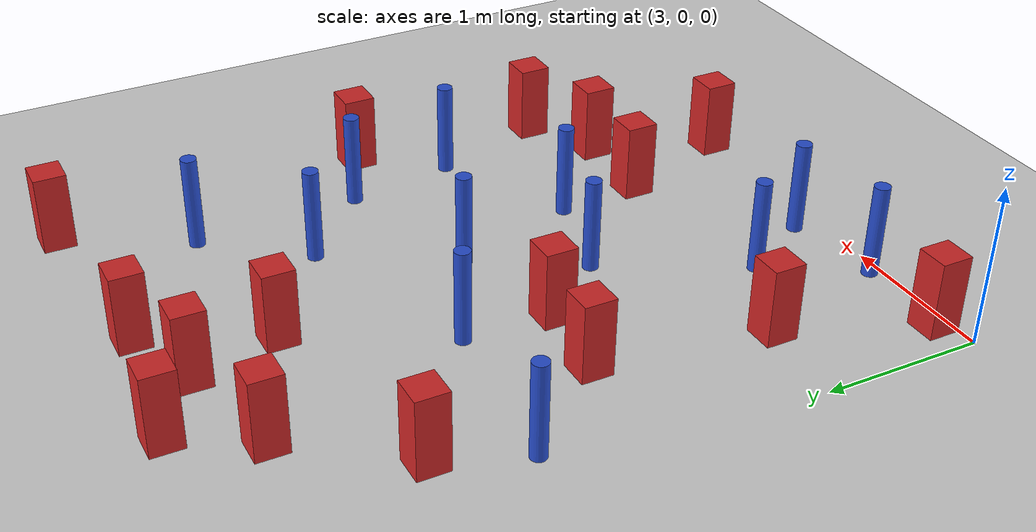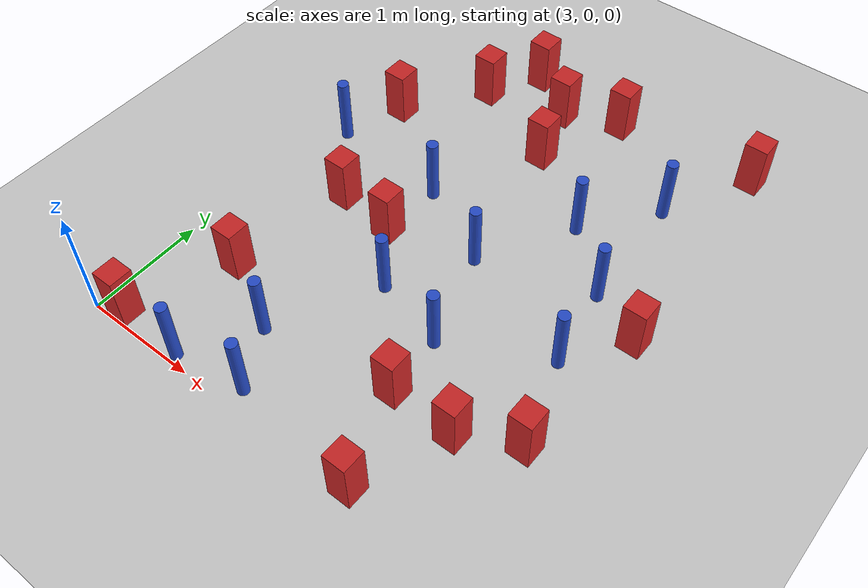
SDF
<sdf version="1.6">
 <world name="default">
  <model name="ground_plane">
   <static>1</static>
   <link name="link">
    <collision name="collision">
     <geometry><plane><normal>0 0 1</normal><size>100 100</size></plane></geometry>
     <surface><friction><ode><mu>100</mu><mu2>50</mu2></ode></friction></surface>
    </collision>
    <visual name="visual">
     <cast_shadows>0</cast_shadows>
     <geometry><plane><normal>0 0 1</normal><size>100 100</size></plane></geometry>
     <material>
      <ambient>1.0 1.0 1.0 1.0</ambient>
      <diffuse>0.8 0.8 0.8 1.0</diffuse>
      <specular>0.01 0.01 0.01 1.000000</specular>
     </material>
    </visual>
   </link>
  </model>
  <model name="square_post_obstacle9">
   <static>true</static>
   <pose>5.31786729422 0.826178670648 1.91545236811e-07 -7.35059704564e-06 1.12565212e-07 2.39332434364e-05</pose>
   <link name="link">
    <pose>0 0 0.25 0 -0 0</pose>
    <inertial>
     <mass>100</mass>
     <inertia>
      <ixx>0.166667</ixx>
      <ixy>0</ixy>
      <ixz>0</ixz>
      <iyy>0.166667</iyy>
      <iyz>0</iyz>
      <izz>0.166667</izz>
     </inertia>
    </inertial>
    <collision name="collision"><geometry><box><size>.2 .2 .5</size></box></geometry></collision>
    <visual name="visual">
     <geometry><box><size>.2 .2 .5</size></box></geometry>
     <material>
      <script><name>Gazebo/Red</name><uri>file://media/materials/scripts/gazebo.material</uri></script>
     </material>
    </visual>
   </link>
  </model>
  <model name="pole_obstacle8">
   <static>true</static>
   <pose>5.99474519024 2.49112717704 7.38925637345e-09 -8.47170692798e-08 1.24976764937e-08 -1.74513093023e-07</pose>
   <link name="link">
    <pose>0 0 0.3 0 -0 0</pose>
    <inertial>
     <mass>1</mass>
     <inertia><ixx>0.145833</ixx><ixy>0</ixy><ixz>0</ixz><iyy>0.145833</iyy><iyz>0</iyz><izz>0.125</izz></inertia>
    </inertial>
    <collision name="collision">
     <geometry><cylinder><radius>0.05</radius><length>.6</length></cylinder></geometry>
    </collision>
    <visual name="visual">
     <geometry><cylinder><radius>0.05</radius><length>.6</length></cylinder></geometry>
     <material>
      <script><name>Gazebo/Blue</name><uri>file://media/materials/scripts/gazebo.material</uri></script>
     </material>
    </visual>
   </link>
  </model>
  <model name="pole_obstacle12">
   <static>true</static>
   <pose>4.17921115617 0.650031408864 7.38925637345e-09 -8.47170692799e-08 1.24976765038e-08 -1.74513093018e-07</pose>
   <link name="link">
    <pose>0 0 0.3 0 -0 0</pose>
    <inertial>
     <mass>1</mass>
     <inertia><ixx>0.145833</ixx><ixy>0</ixy><ixz>0</ixz><iyy>0.145833</iyy><iyz>0</iyz><izz>0.125</izz></inertia>
    </inertial>
    <collision name="collision">
     <geometry><cylinder><radius>0.05</radius><length>.6</length></cylinder></geometry>
    </collision>
    <visual name="visual">
     <geometry><cylinder><radius>0.05</radius><length>.6</length></cylinder></geometry>
     <material>
      <script><name>Gazebo/Blue</name><uri>file://media/materials/scripts/gazebo.material</uri></script>
     </material>
    </visual>
   </link>
  </model>
  <model name="pole_obstacle35">
   <static>true</static>
   <pose>3.24041982638 2.63927868098 7.38925637345e-09 -8.47170692798e-08 1.24976764939e-08 -1.74513093025e-07</pose>
   <link name="link">
    <pose>0 0 0.3 0 -0 0</pose>
    <inertial>
     <mass>1</mass>
     <inertia><ixx>0.145833</ixx><ixy>0</ixy><ixz>0</ixz><iyy>0.145833</iyy><iyz>0</iyz><izz>0.125</izz></inertia>
    </inertial>
    <collision name="collision">
     <geometry><cylinder><radius>0.05</radius><length>.6</length></cylinder></geometry>
    </collision>
    <visual name="visual">
     <geometry><cylinder><radius>0.05</radius><length>.6</length></cylinder></geometry>
     <material>
      <script><name>Gazebo/Blue</name><uri>file://media/materials/scripts/gazebo.material</uri></script>
     </material>
    </visual>
   </link>
  </model>
  <model name="square_post_obstacle41">
   <static>true</static>
   <pose>5.88054170623 0.806153663585 1.91545236811e-07 -7.35059704564e-06 1.12565212e-07 2.39332434364e-05</pose>
   <link name="link">
    <pose>0 0 0.25 0 -0 0</pose>
    <inertial>
     <mass>100</mass>
     <inertia>
      <ixx>0.166667</ixx>
      <ixy>0</ixy>
      <ixz>0</ixz>
      <iyy>0.166667</iyy>
      <iyz>0</iyz>
      <izz>0.166667</izz>
     </inertia>
    </inertial>
    <collision name="collision"><geometry><box><size>.2 .2 .5</size></box></geometry></collision>
    <visual name="visual">
     <geometry><box><size>.2 .2 .5</size></box></geometry>
     <material>
      <script><name>Gazebo/Red</name><uri>file://media/materials/scripts/gazebo.material</uri></script>
     </material>
    </visual>
   </link>
  </model>
  <model name="square_post_obstacle58">
   <static>true</static>
   <pose>3.43550534589 3.17468039565 1.91545236811e-07 -7.35059704564e-06 1.12565212e-07 2.39332434364e-05</pose>
   <link name="link">
    <pose>0 0 0.25 0 -0 0</pose>
    <inertial>
     <mass>100</mass>
     <inertia>
      <ixx>0.166667</ixx>
      <ixy>0</ixy>
      <ixz>0</ixz>
      <iyy>0.166667</iyy>
      <iyz>0</iyz>
      <izz>0.166667</izz>
     </inertia>
    </inertial>
    <collision name="collision"><geometry><box><size>.2 .2 .5</size></box></geometry></collision>
    <visual name="visual">
     <geometry><box><size>.2 .2 .5</size></box></geometry>
     <material>
      <script><name>Gazebo/Red</name><uri>file://media/materials/scripts/gazebo.material</uri></script>
     </material>
    </visual>
   </link>
  </model>
  <model name="square_post_obstacle63">
   <static>true</static>
   <pose>4.62480884657 4.01783704354 1.91545236811e-07 -7.35059704564e-06 1.12565212e-07 2.39332434364e-05</pose>
   <link name="link">
    <pose>0 0 0.25 0 -0 0</pose>
    <inertial>
     <mass>100</mass>
     <inertia>
      <ixx>0.166667</ixx>
      <ixy>0</ixy>
      <ixz>0</ixz>
      <iyy>0.166667</iyy>
      <iyz>0</iyz>
      <izz>0.166667</izz>
     </inertia>
    </inertial>
    <collision name="collision"><geometry><box><size>.2 .2 .5</size></box></geometry></collision>
    <visual name="visual">
     <geometry><box><size>.2 .2 .5</size></box></geometry>
     <material>
      <script><name>Gazebo/Red</name><uri>file://media/materials/scripts/gazebo.material</uri></script>
     </material>
    </visual>
   </link>
  </model>
  <model name="square_post_obstacle73">
   <static>true</static>
   <pose>3.22530703558 0.104143417249 1.91545236811e-07 -7.35059704564e-06 1.12565212e-07 2.39332434364e-05</pose>
   <link name="link">
    <pose>0 0 0.25 0 -0 0</pose>
    <inertial>
     <mass>100</mass>
     <inertia>
      <ixx>0.166667</ixx>
      <ixy>0</ixy>
      <ixz>0</ixz>
      <iyy>0.166667</iyy>
      <iyz>0</iyz>
      <izz>0.166667</izz>
     </inertia>
    </inertial>
    <collision name="collision"><geometry><box><size>.2 .2 .5</size></box></geometry></collision>
    <visual name="visual">
     <geometry><box><size>.2 .2 .5</size></box></geometry>
     <material>
      <script><name>Gazebo/Red</name><uri>file://media/materials/scripts/gazebo.material</uri></script>
     </material>
    </visual>
   </link>
  </model>
  <model name="pole_obstacle77">
   <static>true</static>
   <pose>4.3042402831 2.54303743391 7.38925637345e-09 -8.47170692798e-08 1.24976764937e-08 -1.74513093023e-07</pose>
   <link name="link">
    <pose>0 0 0.3 0 -0 0</pose>
    <inertial>
     <mass>1</mass>
     <inertia><ixx>0.145833</ixx><ixy>0</ixy><ixz>0</ixz><iyy>0.145833</iyy><iyz>0</iyz><izz>0.125</izz></inertia>
    </inertial>
    <collision name="collision">
     <geometry><cylinder><radius>0.05</radius><length>.6</length></cylinder></geometry>
    </collision>
    <visual name="visual">
     <geometry><cylinder><radius>0.05</radius><length>.6</length></cylinder></geometry>
     <material>
      <script><name>Gazebo/Blue</name><uri>file://media/materials/scripts/gazebo.material</uri></script>
     </material>
    </visual>
   </link>
  </model>
  <model name="pole_obstacle93">
   <static>true</static>
   <pose>5.48030016622 2.96484628463 7.38925637345e-09 -8.47170692798e-08 1.24976764937e-08 -1.74513093023e-07</pose>
   <link name="link">
    <pose>0 0 0.3 0 -0 0</pose>
    <inertial>
     <mass>1</mass>
     <inertia><ixx>0.145833</ixx><ixy>0</ixy><ixz>0</ixz><iyy>0.145833</iyy><iyz>0</iyz><izz>0.125</izz></inertia>
    </inertial>
    <collision name="collision">
     <geometry><cylinder><radius>0.05</radius><length>.6</length></cylinder></geometry>
    </collision>
    <visual name="visual">
     <geometry><cylinder><radius>0.05</radius><length>.6</length></cylinder></geometry>
     <material>
      <script><name>Gazebo/Blue</name><uri>file://media/materials/scripts/gazebo.material</uri></script>
     </material>
    </visual>
   </link>
  </model>
  <model name="pole_obstacle98">
   <static>true</static>
   <pose>4.44561478383 0.167517646623 7.38925637345e-09 -8.47170692801e-08 1.24976765186e-08 -1.74513093012e-07</pose>
   <link name="link">
    <pose>0 0 0.3 0 -0 0</pose>
    <inertial>
     <mass>1</mass>
     <inertia><ixx>0.145833</ixx><ixy>0</ixy><ixz>0</ixz><iyy>0.145833</iyy><iyz>0</iyz><izz>0.125</izz></inertia>
    </inertial>
    <collision name="collision">
     <geometry><cylinder><radius>0.05</radius><length>.6</length></cylinder></geometry>
    </collision>
    <visual name="visual">
     <geometry><cylinder><radius>0.05</radius><length>.6</length></cylinder></geometry>
     <material>
      <script><name>Gazebo/Blue</name><uri>file://media/materials/scripts/gazebo.material</uri></script>
     </material>
    </visual>
   </link>
  </model>
  <model name="square_post_obstacle113">
   <static>true</static>
   <pose>3.75170039677 2.05041710894 1.91545236811e-07 -7.35059704564e-06 1.12565212e-07 2.39332434364e-05</pose>
   <link name="link">
    <pose>0 0 0.25 0 -0 0</pose>
    <inertial>
     <mass>100</mass>
     <inertia>
      <ixx>0.166667</ixx>
      <ixy>0</ixy>
      <ixz>0</ixz>
      <iyy>0.166667</iyy>
      <iyz>0</iyz>
      <izz>0.166667</izz>
     </inertia>
    </inertial>
    <collision name="collision"><geometry><box><size>.2 .2 .5</size></box></geometry></collision>
    <visual name="visual">
     <geometry><box><size>.2 .2 .5</size></box></geometry>
     <material>
      <script><name>Gazebo/Red</name><uri>file://media/materials/scripts/gazebo.material</uri></script>
     </material>
    </visual>
   </link>
  </model>
  <model name="pole_obstacle136">
   <static>true</static>
   <pose>4.63659994866 1.52872575339 7.38925637345e-09 -8.471706928e-08 1.24976765134e-08 -1.74513093015e-07</pose>
   <link name="link">
    <pose>0 0 0.3 0 -0 0</pose>
    <inertial>
     <mass>1</mass>
     <inertia><ixx>0.145833</ixx><ixy>0</ixy><ixz>0</ixz><iyy>0.145833</iyy><iyz>0</iyz><izz>0.125</izz></inertia>
    </inertial>
    <collision name="collision">
     <geometry><cylinder><radius>0.05</radius><length>.6</length></cylinder></geometry>
    </collision>
    <visual name="visual">
     <geometry><cylinder><radius>0.05</radius><length>.6</length></cylinder></geometry>
     <material>
      <script><name>Gazebo/Blue</name><uri>file://media/materials/scripts/gazebo.material</uri></script>
     </material>
    </visual>
   </link>
  </model>
  <model name="square_post_obstacle122">
   <static>true</static>
   <pose>4.20020343553 4.3084659481 1.91545236811e-07 -7.35059704564e-06 1.12565212e-07 2.39332434364e-05</pose>
   <link name="link">
    <pose>0 0 0.25 0 -0 0</pose>
    <inertial>
     <mass>100</mass>
     <inertia>
      <ixx>0.166667</ixx>
      <ixy>0</ixy>
      <ixz>0</ixz>
      <iyy>0.166667</iyy>
      <iyz>0</iyz>
      <izz>0.166667</izz>
     </inertia>
    </inertial>
    <collision name="collision"><geometry><box><size>.2 .2 .5</size></box></geometry></collision>
    <visual name="visual">
     <geometry><box><size>.2 .2 .5</size></box></geometry>
     <material>
      <script><name>Gazebo/Red</name><uri>file://media/materials/scripts/gazebo.material</uri></script>
     </material>
    </visual>
   </link>
  </model>
  <model name="pole_obstacle142">
   <static>true</static>
   <pose>5.02172992878 2.18454908833 7.38925637345e-09 -8.47170692798e-08 1.24976764937e-08 -1.74513093023e-07</pose>
   <link name="link">
    <pose>0 0 0.3 0 -0 0</pose>
    <inertial>
     <mass>1</mass>
     <inertia><ixx>0.145833</ixx><ixy>0</ixy><ixz>0</ixz><iyy>0.145833</iyy><iyz>0</iyz><izz>0.125</izz></inertia>
    </inertial>
    <collision name="collision">
     <geometry><cylinder><radius>0.05</radius><length>.6</length></cylinder></geometry>
    </collision>
    <visual name="visual">
     <geometry><cylinder><radius>0.05</radius><length>.6</length></cylinder></geometry>
     <material>
      <script><name>Gazebo/Blue</name><uri>file://media/materials/scripts/gazebo.material</uri></script>
     </material>
    </visual>
   </link>
  </model>
  <model name="square_post_obstacle134">
   <static>true</static>
   <pose>5.11945308864 4.20712000321 1.91545236811e-07 -7.35059704564e-06 1.12565212e-07 2.39332434364e-05</pose>
   <link name="link">
    <pose>0 0 0.25 0 -0 0</pose>
    <inertial>
     <mass>100</mass>
     <inertia>
      <ixx>0.166667</ixx>
      <ixy>0</ixy>
      <ixz>0</ixz>
      <iyy>0.166667</iyy>
      <iyz>0</iyz>
      <izz>0.166667</izz>
     </inertia>
    </inertial>
    <collision name="collision"><geometry><box><size>.2 .2 .5</size></box></geometry></collision>
    <visual name="visual">
     <geometry><box><size>.2 .2 .5</size></box></geometry>
     <material>
      <script><name>Gazebo/Red</name><uri>file://media/materials/scripts/gazebo.material</uri></script>
     </material>
    </visual>
   </link>
  </model>
  <model name="pole_obstacle149">
   <static>true</static>
   <pose>5.94435799046 3.56068486577 7.38925637345e-09 -8.47170692798e-08 1.24976764937e-08 -1.74513093023e-07</pose>
   <link name="link">
    <pose>0 0 0.3 0 -0 0</pose>
    <inertial>
     <mass>1</mass>
     <inertia><ixx>0.145833</ixx><ixy>0</ixy><ixz>0</ixz><iyy>0.145833</iyy><iyz>0</iyz><izz>0.125</izz></inertia>
    </inertial>
    <collision name="collision">
     <geometry><cylinder><radius>0.05</radius><length>.6</length></cylinder></geometry>
    </collision>
    <visual name="visual">
     <geometry><cylinder><radius>0.05</radius><length>.6</length></cylinder></geometry>
     <material>
      <script><name>Gazebo/Blue</name><uri>file://media/materials/scripts/gazebo.material</uri></script>
     </material>
    </visual>
   </link>
  </model>
  <model name="square_post_obstacle149">
   <static>true</static>
   <pose>3.57648495985 0.961425865712 1.91545236811e-07 -7.35059704564e-06 1.12565212e-07 2.39332434364e-05</pose>
   <link name="link">
    <pose>0 0 0.25 0 -0 0</pose>
    <inertial>
     <mass>100</mass>
     <inertia>
      <ixx>0.166667</ixx>
      <ixy>0</ixy>
      <ixz>0</ixz>
      <iyy>0.166667</iyy>
      <iyz>0</iyz>
      <izz>0.166667</izz>
     </inertia>
    </inertial>
    <collision name="collision"><geometry><box><size>.2 .2 .5</size></box></geometry></collision>
    <visual name="visual">
     <geometry><box><size>.2 .2 .5</size></box></geometry>
     <material>
      <script><name>Gazebo/Red</name><uri>file://media/materials/scripts/gazebo.material</uri></script>
     </material>
    </visual>
   </link>
  </model>
  <model name="square_post_obstacle154">
   <static>true</static>
   <pose>5.57673047773 0.0523164664692 1.91545236811e-07 -7.35059704564e-06 1.12565212e-07 2.39332434364e-05</pose>
   <link name="link">
    <pose>0 0 0.25 0 -0 0</pose>
    <inertial>
     <mass>100</mass>
     <inertia>
      <ixx>0.166667</ixx>
      <ixy>0</ixy>
      <ixz>0</ixz>
      <iyy>0.166667</iyy>
      <iyz>0</iyz>
      <izz>0.166667</izz>
     </inertia>
    </inertial>
    <collision name="collision"><geometry><box><size>.2 .2 .5</size></box></geometry></collision>
    <visual name="visual">
     <geometry><box><size>.2 .2 .5</size></box></geometry>
     <material>
      <script><name>Gazebo/Red</name><uri>file://media/materials/scripts/gazebo.material</uri></script>
     </material>
    </visual>
   </link>
  </model>
  <model name="pole_obstacle177">
   <static>true</static>
   <pose>6.10842906281 1.78926941349 7.38925637345e-09 -8.471706928e-08 1.24976765134e-08 -1.74513093015e-07</pose>
   <link name="link">
    <pose>0 0 0.3 0 -0 0</pose>
    <inertial>
     <mass>1</mass>
     <inertia><ixx>0.145833</ixx><ixy>0</ixy><ixz>0</ixz><iyy>0.145833</iyy><iyz>0</iyz><izz>0.125</izz></inertia>
    </inertial>
    <collision name="collision">
     <geometry><cylinder><radius>0.05</radius><length>.6</length></cylinder></geometry>
    </collision>
    <visual name="visual">
     <geometry><cylinder><radius>0.05</radius><length>.6</length></cylinder></geometry>
     <material>
      <script><name>Gazebo/Blue</name><uri>file://media/materials/scripts/gazebo.material</uri></script>
     </material>
    </visual>
   </link>
  </model>
  <model name="square_post_obstacle178">
   <static>true</static>
   <pose>3.92685463476 3.84357603842 1.91545236811e-07 -7.35059704564e-06 1.12565212e-07 2.39332434364e-05</pose>
   <link name="link">
    <pose>0 0 0.25 0 -0 0</pose>
    <inertial>
     <mass>100</mass>
     <inertia>
      <ixx>0.166667</ixx>
      <ixy>0</ixy>
      <ixz>0</ixz>
      <iyy>0.166667</iyy>
      <iyz>0</iyz>
      <izz>0.166667</izz>
     </inertia>
    </inertial>
    <collision name="collision"><geometry><box><size>.2 .2 .5</size></box></geometry></collision>
    <visual name="visual">
     <geometry><box><size>.2 .2 .5</size></box></geometry>
     <material>
      <script><name>Gazebo/Red</name><uri>file://media/materials/scripts/gazebo.material</uri></script>
     </material>
    </visual>
   </link>
  </model>
  <model name="square_post_obstacle182">
   <static>true</static>
   <pose>6.33742854047 1.04791664392 1.91545236811e-07 -7.35059704564e-06 1.12565212e-07 2.39332434364e-05</pose>
   <link name="link">
    <pose>0 0 0.25 0 -0 0</pose>
    <inertial>
     <mass>100</mass>
     <inertia>
      <ixx>0.166667</ixx>
      <ixy>0</ixy>
      <ixz>0</ixz>
      <iyy>0.166667</iyy>
      <iyz>0</iyz>
      <izz>0.166667</izz>
     </inertia>
    </inertial>
    <collision name="collision"><geometry><box><size>.2 .2 .5</size></box></geometry></collision>
    <visual name="visual">
     <geometry><box><size>.2 .2 .5</size></box></geometry>
     <material>
      <script><name>Gazebo/Red</name><uri>file://media/materials/scripts/gazebo.material</uri></script>
     </material>
    </visual>
   </link>
  </model>
  <model name="square_post_obstacle188">
   <static>true</static>
   <pose>6.45697858466 2.28376051371 1.91545236811e-07 -7.35059704564e-06 1.12565212e-07 2.39332434364e-05</pose>
   <link name="link">
    <pose>0 0 0.25 0 -0 0</pose>
    <inertial>
     <mass>100</mass>
     <inertia>
      <ixx>0.166667</ixx>
      <ixy>0</ixy>
      <ixz>0</ixz>
      <iyy>0.166667</iyy>
      <iyz>0</iyz>
      <izz>0.166667</izz>
     </inertia>
    </inertial>
    <collision name="collision"><geometry><box><size>.2 .2 .5</size></box></geometry></collision>
    <visual name="visual">
     <geometry><box><size>.2 .2 .5</size></box></geometry>
     <material>
      <script><name>Gazebo/Red</name><uri>file://media/materials/scripts/gazebo.material</uri></script>
     </material>
    </visual>
   </link>
  </model>
  <model name="square_post_obstacle189">
   <static>true</static>
   <pose>4.27634494978 1.98815845714 1.91545236811e-07 -7.35059704564e-06 1.12565212e-07 2.39332434364e-05</pose>
   <link name="link">
    <pose>0 0 0.25 0 -0 0</pose>
    <inertial>
     <mass>100</mass>
     <inertia>
      <ixx>0.166667</ixx>
      <ixy>0</ixy>
      <ixz>0</ixz>
      <iyy>0.166667</iyy>
      <iyz>0</iyz>
      <izz>0.166667</izz>
     </inertia>
    </inertial>
    <collision name="collision"><geometry><box><size>.2 .2 .5</size></box></geometry></collision>
    <visual name="visual">
     <geometry><box><size>.2 .2 .5</size></box></geometry>
     <material>
      <script><name>Gazebo/Red</name><uri>file://media/materials/scripts/gazebo.material</uri></script>
     </material>
    </visual>
   </link>
  </model>
  <model name="square_post_obstacle209">
   <static>true</static>
   <pose>4.77513317206 3.46529167447 1.91545236811e-07 -7.35059704564e-06 1.12565212e-07 2.39332434364e-05</pose>
   <link name="link">
    <pose>0 0 0.25 0 -0 0</pose>
    <inertial>
     <mass>100</mass>
     <inertia>
      <ixx>0.166667</ixx>
      <ixy>0</ixy>
      <ixz>0</ixz>
      <iyy>0.166667</iyy>
      <iyz>0</iyz>
      <izz>0.166667</izz>
     </inertia>
    </inertial>
    <collision name="collision"><geometry><box><size>.2 .2 .5</size></box></geometry></collision>
    <visual name="visual">
     <geometry><box><size>.2 .2 .5</size></box></geometry>
     <material>
      <script><name>Gazebo/Red</name><uri>file://media/materials/scripts/gazebo.material</uri></script>
     </material>
    </visual>
   </link>
  </model>
  <model name="square_post_obstacle210">
   <static>true</static>
   <pose>6.35404912152 4.32688863366 1.91545236811e-07 -7.35059704564e-06 1.12565212e-07 2.39332434364e-05</pose>
   <link name="link">
    <pose>0 0 0.25 0 -0 0</pose>
    <inertial>
     <mass>100</mass>
     <inertia>
      <ixx>0.166667</ixx>
      <ixy>0</ixy>
      <ixz>0</ixz>
      <iyy>0.166667</iyy>
      <iyz>0</iyz>
      <izz>0.166667</izz>
     </inertia>
    </inertial>
    <collision name="collision"><geometry><box><size>.2 .2 .5</size></box></geometry></collision>
    <visual name="visual">
     <geometry><box><size>.2 .2 .5</size></box></geometry>
     <material>
      <script><name>Gazebo/Red</name><uri>file://media/materials/scripts/gazebo.material</uri></script>
     </material>
    </visual>
   </link>
  </model>
  <model name="pole_obstacle204">
   <static>true</static>
   <pose>5.27330000957 1.35592002078 7.38925637345e-09 -8.471706928e-08 1.24976765143e-08 -1.74513093015e-07</pose>
   <link name="link">
    <pose>0 0 0.3 0 -0 0</pose>
    <inertial>
     <mass>1</mass>
     <inertia><ixx>0.145833</ixx><ixy>0</ixy><ixz>0</ixz><iyy>0.145833</iyy><iyz>0</iyz><izz>0.125</izz></inertia>
    </inertial>
    <collision name="collision">
     <geometry><cylinder><radius>0.05</radius><length>.6</length></cylinder></geometry>
    </collision>
    <visual name="visual">
     <geometry><cylinder><radius>0.05</radius><length>.6</length></cylinder></geometry>
     <material>
      <script><name>Gazebo/Blue</name><uri>file://media/materials/scripts/gazebo.material</uri></script>
     </material>
    </visual>
   </link>
  </model>
  <model name="pole_obstacle205">
   <static>true</static>
   <pose>3.82960000957 0.0715850207814 7.38925637345e-09 -8.47170692793e-08 1.24976764408e-08 -1.74513093042e-07</pose>
   <link name="link">
    <pose>0 0 0.3 0 -0 0</pose>
    <inertial>
     <mass>1</mass>
     <inertia><ixx>0.145833</ixx><ixy>0</ixy><ixz>0</ixz><iyy>0.145833</iyy><iyz>0</iyz><izz>0.125</izz></inertia>
    </inertial>
    <collision name="collision">
     <geometry><cylinder><radius>0.05</radius><length>.6</length></cylinder></geometry>
    </collision>
    <visual name="visual">
     <geometry><cylinder><radius>0.05</radius><length>.6</length></cylinder></geometry>
     <material>
      <script><name>Gazebo/Blue</name><uri>file://media/materials/scripts/gazebo.material</uri></script>
     </material>
    </visual>
   </link>
  </model>
 </world>
</sdf>
